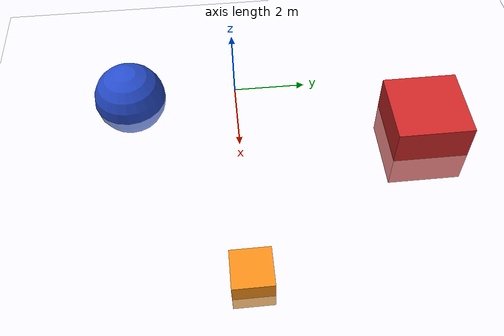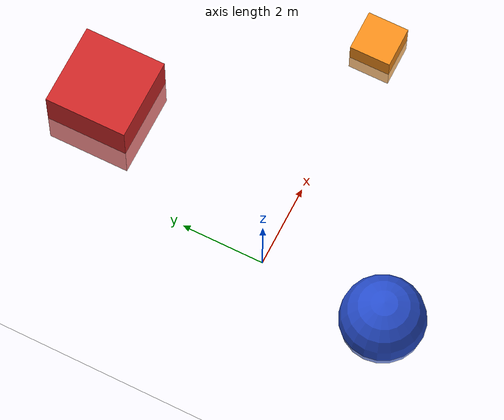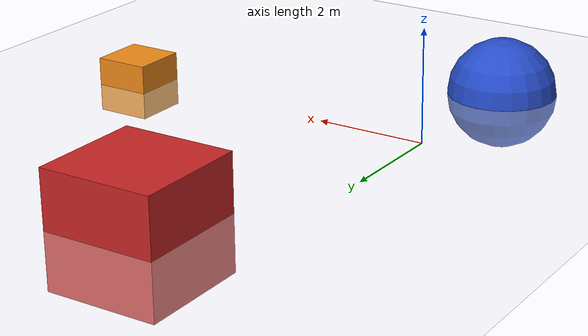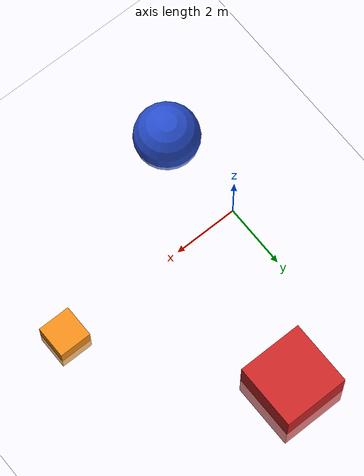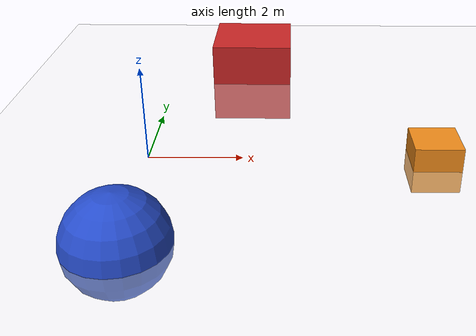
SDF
<?xml version="1.0" ?>
<sdf version="1.5">
  <world name="default">
    <!-- A global light source -->
    <include>
      <uri>model://sun</uri>
    </include>

    <!-- Custom white ground plane -->
    <model name="white_ground_plane">
      <static>true</static>
      <link name="link">
        <collision name="collision">
          <geometry>
            <plane>
              <normal>0 0 1</normal>
              <size>100 100</size> <!-- Adjust the size as needed -->
            </plane>
          </geometry>
          <surface>
            <friction>
              <ode>
                <mu>2.0</mu>
                <mu2>2.0</mu2>
              </ode>
            </friction>
          </surface>
        </collision>
        <visual name="visual">
          <geometry>
            <plane>
              <normal>0 0 1</normal>
              <size>100 100</size>
            </plane>
          </geometry>
          <material>
            <ambient>1 1 1 1</ambient> <!-- White color for ambient light -->
            <diffuse>1 1 1 1</diffuse> <!-- White color for diffuse light -->
          </material>
        </visual>
      </link>
    </model>

    <physics name='default_physics' default='0' type='ode'>
      <gravity>0 0 -9.8066</gravity>
      <ode>
        <solver>
          <type>quick</type>
          <iters>50</iters>
          <sor>1.3</sor>
          <use_dynamic_moi_rescaling>0</use_dynamic_moi_rescaling>
        </solver>
        <constraints>
          <cfm>0</cfm>
          <erp>0.2</erp>
          <contact_max_correcting_vel>100</contact_max_correcting_vel>
          <contact_surface_layer>0.001</contact_surface_layer>
        </constraints>
      </ode>
      <max_step_size>0.004</max_step_size>
      <real_time_factor>1</real_time_factor>
      <real_time_update_rate>250</real_time_update_rate>
      <magnetic_field>6.0e-6 2.3e-5 -4.2e-5</magnetic_field>
    </physics>

    <model name="cube_0">
    <pose>0 0 0 0 0 0</pose>
    <link name="link">
      <pose>6 0 0 0 0 0</pose>
      <visual name="visual">
        <geometry>
          <box>
            <size>1 1 1</size> <!-- Dimensions of the cube -->
          </box>
        </geometry>
        <material>
          <script>
            <uri>file://media/materials/scripts/gazebo.material</uri>
            <name>Gazebo/Orange</name>
          </script>
        </material>
      </visual>
      <collision name="collision">
        <geometry>
          <box>
            <size>1 1 1</size> <!-- Dimensions of the cube -->
          </box>
        </geometry>
      </collision>
    </link>
  </model>

  <model name="cube_1">
    <pose>0 0 0 0 0 0</pose>
    <link name="link">
      <pose>2 5 0 0 0 0</pose>
      <visual name="visual">
        <geometry>
          <box>
            <size>2 2 2</size> <!-- Dimensions of the cube -->
          </box>
        </geometry>
        <material>
          <script>
            <uri>file://media/materials/scripts/gazebo.material</uri>
            <name>Gazebo/Red</name>
          </script>
        </material>
      </visual>
      <collision name="collision">
        <geometry>
          <box>
            <size>2 2 2</size> <!-- Dimensions of the cube -->
          </box>
        </geometry>
      </collision>
    </link>
  </model>

  <model name="sphere">
    <pose>0 -3 0 0 0 0</pose>
    <link name="link">
      <pose>0 0 0 0 0 0</pose>
      <visual name="visual">
        <geometry>
          <sphere>
            <radius>1.0</radius> <!-- Radius of the sphere -->
          </sphere>
        </geometry>
        <material>
          <script>
            <uri>file://media/materials/scripts/gazebo.material</uri>
            <name>Gazebo/Blue</name>
          </script>
        </material>
      </visual>
      <collision name="collision">
        <geometry>
          <sphere>
            <radius>1.0</radius> <!-- Radius of the sphere -->
          </sphere>
        </geometry>
      </collision>
    </link>
  </model>

  </world>
</sdf>
